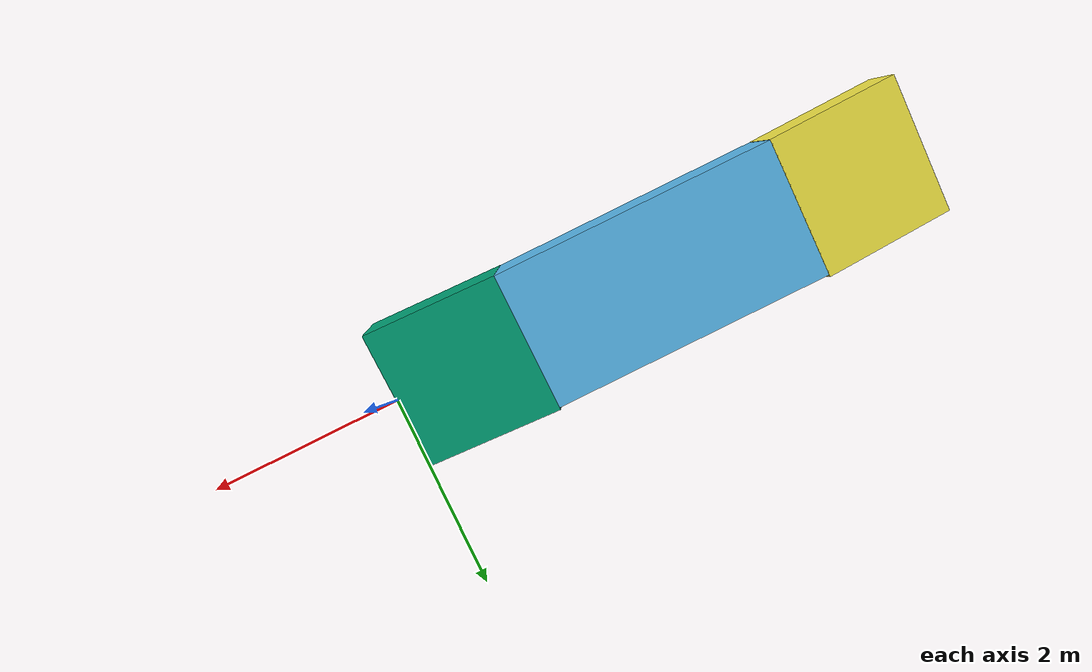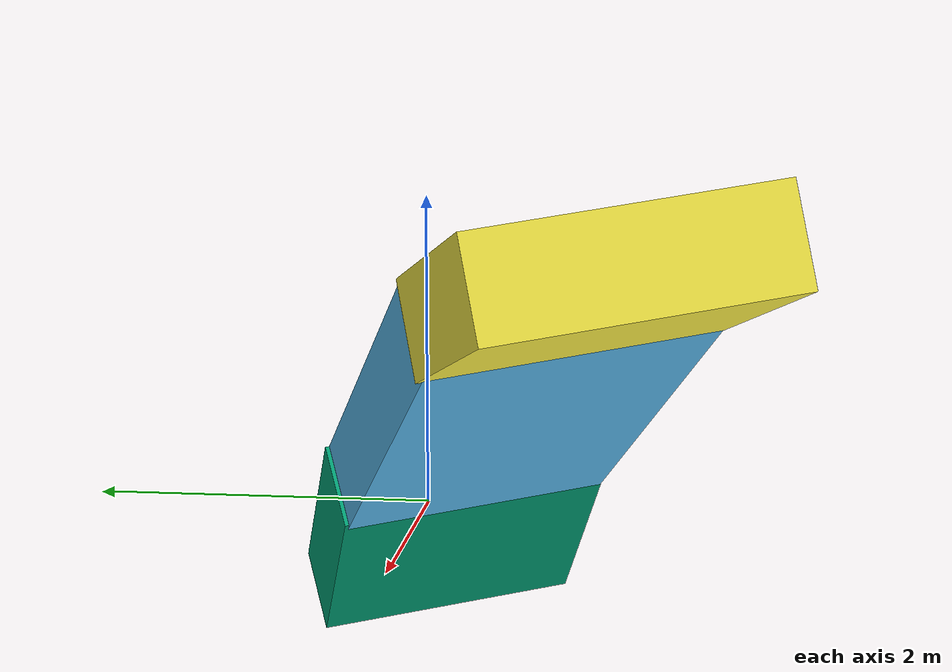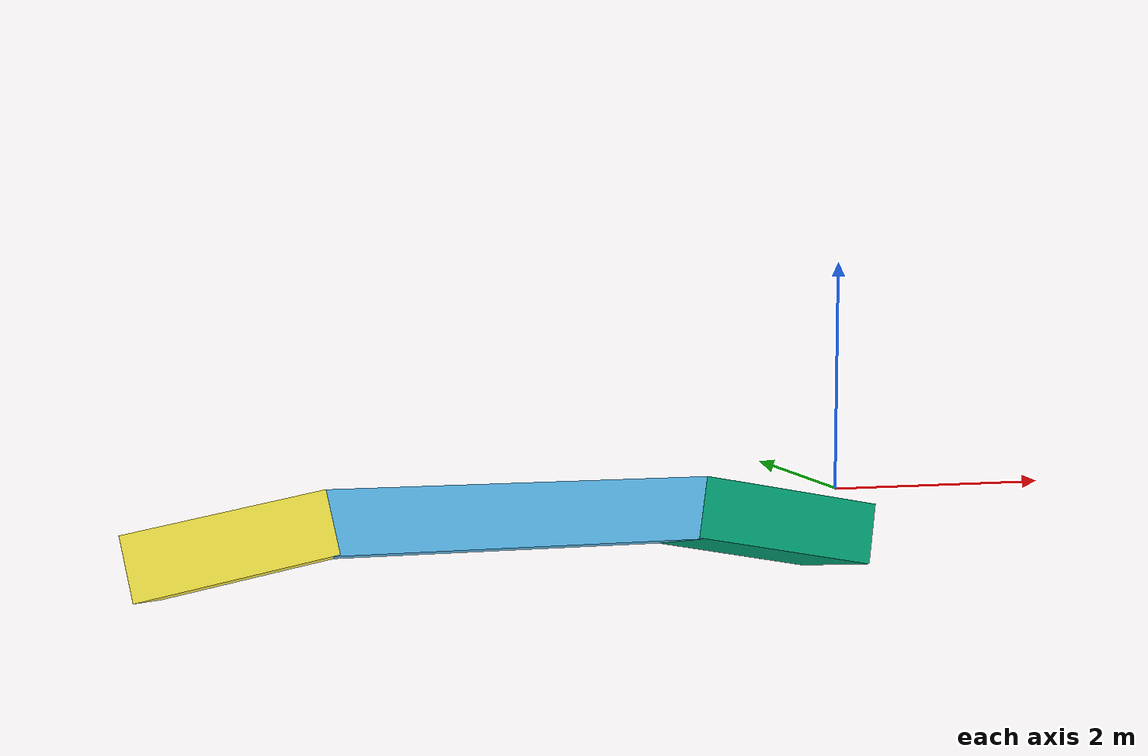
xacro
<?xml version="1.0"?>
<robot name="tilted_path" xmlns:xacro="http://www.ros.org/wiki/xacro">
    <gazebo>
        <static>true</static>
    </gazebo>

    <!-- Sizes from the rules of the cybathlon 2020 -->
    <xacro:property name="middle_block_length" default="3"/>
    <xacro:property name="middle_block_width" default="1.474"/>
    <xacro:property name="middle_block_height" default="0.5"/>
    <xacro:property name="middle_block_angle" default="0.21"/>
    <xacro:property name="side_blocks_length" default="1.474"/>
    <xacro:property name="side_blocks_width" default="1.5"/>
    <xacro:property name="side_blocks_height" default="0.5"/>
    <xacro:property name="side_blocks_angle" default="0.192"/>
    <xacro:property name="distance_to_origin" default="0.4"/>

    <xacro:property name="parent_name" value="world"/>
    <xacro:property name="mu1" value="1.0"/>
    <xacro:property name="mu2" value="1.0"/>
    <!-- Minimum allowable depth before contact correction impulse is applied. -->
    <xacro:property name="min_depth" value="0.0005"/>

    <!-- Used for fixing robot to Gazebo 'base_link' -->
    <link name="${parent_name}"/>

    <!-- Links -->
    <link name="middle_block">
        <collision>
          <geometry>
            <box size="${middle_block_length} ${middle_block_width} ${middle_block_height}" />
          </geometry>
        </collision>

        <visual name='visual'>
          <geometry>
            <box size="${middle_block_length} ${middle_block_width} ${middle_block_height}" />
          </geometry>
        </visual>
        <inertial>
            <origin xyz="0 0 0" rpy="0 0 0"/>
            <mass value="1"/>
            <inertia
                    ixx="1"
                    ixy="1"
                    ixz="1"
                    iyy="1"
                    iyz="1"
                    izz="1" />
        </inertial>
    </link>

    <link name="side_block_1">
        <collision>
          <origin xyz="0 0 0" rpy="0 0 0"/>
          <geometry>
            <box size="${side_blocks_length} ${side_blocks_width} ${side_blocks_height}" />
          </geometry>
        </collision>

        <visual name='visual'>
          <origin xyz="0 0 0" rpy="0 0 0"/>
          <geometry>
            <box size="${side_blocks_length} ${side_blocks_width} ${side_blocks_height}" />
          </geometry>
        </visual>
    </link>

    <link name="side_block_2">
        <collision>
            <origin xyz="0 0 0" rpy="0 0 0"/>
            <geometry>
                <box size="${side_blocks_length} ${side_blocks_width} ${side_blocks_height}" />
            </geometry>
        </collision>

        <visual name='visual'>
            <origin xyz="0 0 0" rpy="0 0 0"/>
            <geometry>
                <box size="${side_blocks_length} ${side_blocks_width} ${side_blocks_height}" />
            </geometry>
        </visual>
    </link>

    <gazebo reference="middle_block">
        <mu1>${mu1}</mu1>
        <mu2>${mu2}</mu2>
        <minDepth>${min_depth}</minDepth>
    </gazebo>

    <gazebo reference="side_block_1">
        <mu1>${mu1}</mu1>
        <mu2>${mu2}</mu2>
        <minDepth>${min_depth}</minDepth>
    </gazebo>

    <gazebo reference="side_block_2">
        <mu1>${mu1}</mu1>
        <mu2>${mu2}</mu2>
        <minDepth>${min_depth}</minDepth>
    </gazebo>

    <!-- Joints -->
    <joint name="hip" type="fixed">
        <parent link="${parent_name}"/>
        <child link="middle_block"/>
        <origin xyz="${-distance_to_origin-2.5} 0 -0.15" rpy="${- middle_block_angle} 0 0"/>
    </joint>

    <joint name="joint_1" type="fixed">
        <parent link="middle_block"/>
        <child link="side_block_1"/>
        <origin xyz="2.17 0.01 -0.135" rpy="0 ${side_blocks_angle} 0"/>
    </joint>

    <joint name="joint_2" type="fixed">
        <parent link="middle_block"/>
        <child link="side_block_2"/>
        <origin xyz="-2.17 0.01 -0.135" rpy="0 ${-side_blocks_angle} 0"/>
    </joint>

</robot>
